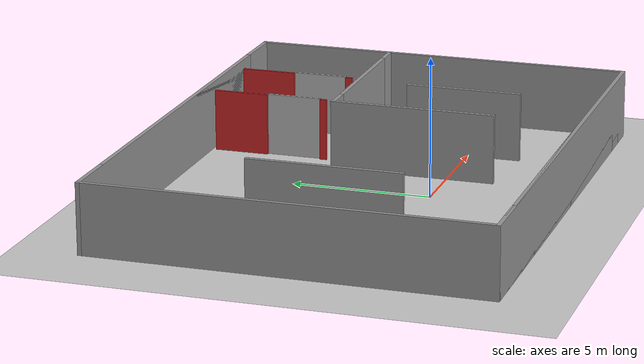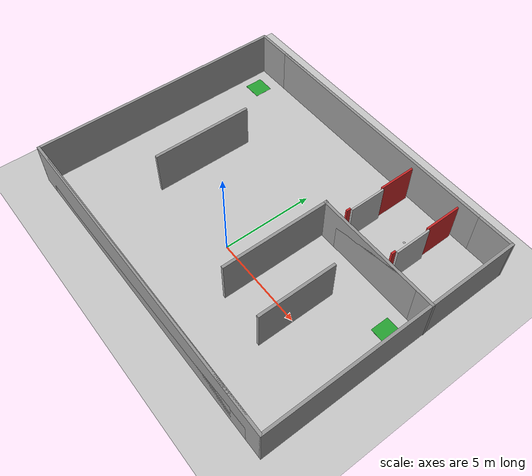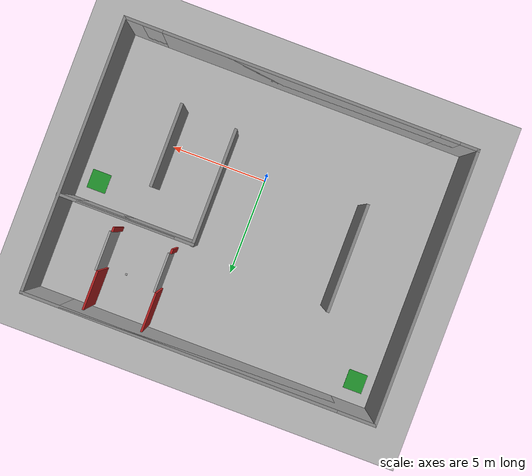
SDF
<sdf version="1.6">
 <world name="default">
  <light name="sun" type="directional">
   <pose>0 0 10 0 -0 0</pose>
   <diffuse>0.8 0.8 0.8 1</diffuse>
   <specular>0.1 0.1 0.1 1</specular>
   <attenuation>
    <range>1000</range>
    <constant>0.9</constant>
    <linear>0.01</linear>
    <quadratic>0.001</quadratic>
   </attenuation>
   <direction>-0.5 0.5 -1</direction>
  </light>
  <model name="ground_plane">
   <static>1</static>
   <link name="link">
    <collision name="collision">
     <geometry><plane><normal>0 0 1</normal><size>100 100</size></plane></geometry>
     <surface><friction><ode><mu>100</mu><mu2>50</mu2></ode></friction></surface>
    </collision>
    <visual name="visual">
     <cast_shadows>0</cast_shadows>
     <geometry><plane><normal>0 0 1</normal><size>100 100</size></plane></geometry>
     <material>
      <script><uri>file://media/materials/scripts/gazebo.material</uri><name>Gazebo/Grey</name></script>
     </material>
    </visual>
   </link>
  </model>
  <plugin name="elevator_event_plugin" filename="libSimEventsPlugin.so">
   <region><name>region1</name><volume><min>-8.5 7.5 0.0</min><max>-7.5 8.5 0.5</max></volume></region>
   <region><name>region2</name><volume><min>-7.5 7.5 0.0</min><max>-6.5 8.5 0.5</max></volume></region>
   <region><name>door1_close</name><volume><min>-8.5 6.5 0.0</min><max>-6.5 7.5 0.5</max></volume></region>
   <region><name>region3</name><volume><min>7.5 2.5 0.0</min><max>8.5 3.5 0.5</max></volume></region>
   <region><name>region4</name><volume><min>6.5 2.5 0.0</min><max>7.5 3.5 0.5</max></volume></region>
   <region><name>region5</name><volume><min>6.5 1.5 0.0</min><max>8.5 2.5 0.5</max></volume></region>
   <region><name>region6</name><volume><min>6.5 -8.5 0.05</min><max>7.5 7.5 0.5</max></volume></region>
   <event>
    <name>region1_event</name>
    <type>occupied</type>
    <region>region1</region>
    <topic>~/door1</topic>
    <msg_data>0</msg_data>
   </event>
   <event>
    <name>close1_event</name>
    <type>occupied</type>
    <region>door1_close</region>
    <topic>~/door1</topic>
    <msg_data>1</msg_data>
   </event>
   <event>
    <name>region2_event</name>
    <type>occupied</type>
    <region>region2</region>
    <topic>~/door1</topic>
    <msg_data>1</msg_data>
   </event>
   <event>
    <name>region3_event</name>
    <type>occupied</type>
    <region>region3</region>
    <topic>~/door2</topic>
    <msg_data>0</msg_data>
   </event>
   <event>
    <name>region4_event</name>
    <type>occupied</type>
    <region>region4</region>
    <topic>~/door2</topic>
    <msg_data>1</msg_data>
   </event>
   <event>
    <name>region5_event</name>
    <type>occupied</type>
    <region>region5</region>
    <topic>~/door2</topic>
    <msg_data>1</msg_data>
   </event>
  </plugin>
  <model name="door1">
   <pose>2 7 0.005 0 -0 0</pose>
   <link name="link">
    <inertial>
     <mass>800</mass>
     <inertia><ixx>1</ixx><ixy>0</ixy><ixz>0</ixz><iyy>1</iyy><iyz>0</iyz><izz>1</izz></inertia>
    </inertial>
    <collision name="floor_collision"><geometry><box><size>0.01 0.01 0.01</size></box></geometry></collision>
    <visual name="floor_visual"><geometry><box><size>0.01 0.01 0.01</size></box></geometry></visual>
    <collision name="wall1_collision">
     <pose>1 1 1.125 0 -0 0</pose>
     <geometry><box><size>0.1 2 2.25</size></box></geometry>
    </collision>
    <visual name="wall1_visual">
     <pose>1 1 1.125 0 -0 0</pose>
     <geometry><box><size>0.1 2 2.25</size></box></geometry>
     <material><script><name>Gazebo/Red</name><uri>__default__</uri></script></material>
    </visual>
    <collision name="wall2_collision">
     <pose>1 -2.125 1.125 0 -0 0</pose>
     <geometry><box><size>0.1 0.25 2.25</size></box></geometry>
    </collision>
    <visual name="wall2_visual">
     <pose>1 -2.125 1.125 0 -0 0</pose>
     <geometry><box><size>0.1 0.25 2.25</size></box></geometry>
     <material><script><name>Gazebo/Red</name><uri>__default__</uri></script></material>
    </visual>
   </link>
   <link name="door">
    <pose>1.1 -1 1.125 0 -0 0</pose>
    <collision name="collision"><geometry><box><size>0.1 2 2.25</size></box></geometry></collision>
    <visual name="visual"><geometry><box><size>0.1 2 2.25</size></box></geometry></visual>
    <inertial>
     <inertia><ixx>1</ixx><ixy>0</ixy><ixz>0</ixz><iyy>1</iyy><iyz>0</iyz><izz>1</izz></inertia>
     <mass>1</mass>
    </inertial>
   </link>
   <joint name="door" type="prismatic">
    <parent>link</parent>
    <child>door</child>
    <axis>
     <xyz>0 1 0</xyz>
     <limit><lower>0</lower><upper>2</upper><effort>10</effort></limit>
     <dynamics>
      <damping>2</damping>
      <spring_reference>0</spring_reference>
      <spring_stiffness>0</spring_stiffness>
     </dynamics>
     <use_parent_model_frame>0</use_parent_model_frame>
    </axis>
   </joint>
   <joint name="lift" type="prismatic">
    <parent>world</parent>
    <child>link</child>
    <axis>
     <xyz>0 0 1</xyz>
     <limit><lower>0</lower><upper>10</upper><effort>100000</effort></limit>
     <dynamics>
      <damping>50</damping>
      <spring_reference>0</spring_reference>
      <spring_stiffness>0</spring_stiffness>
     </dynamics>
     <use_parent_model_frame>0</use_parent_model_frame>
    </axis>
    <physics>
     <ode><implicit_spring_damper>1</implicit_spring_damper><limit><cfm>0</cfm><erp>0.2</erp></limit></ode>
    </physics>
   </joint>
   <plugin name="door1_plugin" filename="libdoor.so">
    <lift_joint>door1::lift</lift_joint>
    <door_joint>door1::door</door_joint>
    <floor_height>3.075</floor_height>
    <door_wait_time>10</door_wait_time>
    <topic>~/door1</topic>
   </plugin>
  </model>
  <model name="door2">
   <pose>5 7 0.005 0 0 -2.2e-05</pose>
   <link name="link">
    <inertial>
     <mass>800</mass>
     <inertia><ixx>1</ixx><ixy>0</ixy><ixz>0</ixz><iyy>1</iyy><iyz>0</iyz><izz>1</izz></inertia>
    </inertial>
    <collision name="floor_collision"><geometry><box><size>0.1 0.1 0.01</size></box></geometry></collision>
    <visual name="floor_visual"><geometry><box><size>0.1 0.1 0.01</size></box></geometry></visual>
    <collision name="wall1_collision">
     <pose>1 1 1.125 0 -0 0</pose>
     <geometry><box><size>0.1 2 2.25</size></box></geometry>
    </collision>
    <visual name="wall1_visual">
     <pose>1 1 1.125 0 -0 0</pose>
     <geometry><box><size>0.1 2 2.25</size></box></geometry>
     <material><script><name>Gazebo/Red</name><uri>__default__</uri></script></material>
    </visual>
    <collision name="wall2_collision">
     <pose>1 -2.125 1.125 0 -0 0</pose>
     <geometry><box><size>0.1 0.25 2.25</size></box></geometry>
    </collision>
    <visual name="wall2_visual">
     <pose>1 -2.125 1.125 0 -0 0</pose>
     <geometry><box><size>0.1 0.25 2.25</size></box></geometry>
     <material><script><name>Gazebo/Red</name><uri>__default__</uri></script></material>
    </visual>
   </link>
   <link name="door">
    <pose>1.1 -1 1.125 0 -0 0</pose>
    <collision name="collision"><geometry><box><size>0.1 2 2.25</size></box></geometry></collision>
    <visual name="visual"><geometry><box><size>0.1 2 2.25</size></box></geometry></visual>
    <inertial>
     <inertia><ixx>1</ixx><ixy>0</ixy><ixz>0</ixz><iyy>1</iyy><iyz>0</iyz><izz>1</izz></inertia>
     <mass>1</mass>
    </inertial>
   </link>
   <joint name="door" type="prismatic">
    <parent>link</parent>
    <child>door</child>
    <axis>
     <xyz>0 1 0</xyz>
     <limit><lower>0</lower><upper>2</upper><effort>10</effort></limit>
     <dynamics>
      <damping>2</damping>
      <spring_reference>0</spring_reference>
      <spring_stiffness>0</spring_stiffness>
     </dynamics>
     <use_parent_model_frame>0</use_parent_model_frame>
    </axis>
   </joint>
   <joint name="lift" type="prismatic">
    <parent>world</parent>
    <child>link</child>
    <axis>
     <xyz>0 0 1</xyz>
     <limit><lower>0</lower><upper>10</upper><effort>100000</effort></limit>
     <dynamics>
      <damping>50</damping>
      <spring_reference>0</spring_reference>
      <spring_stiffness>0</spring_stiffness>
     </dynamics>
     <use_parent_model_frame>0</use_parent_model_frame>
    </axis>
    <physics>
     <ode><implicit_spring_damper>1</implicit_spring_damper><limit><cfm>0</cfm><erp>0.2</erp></limit></ode>
    </physics>
   </joint>
   <plugin name="door2_plugin" filename="libdoor.so">
    <lift_joint>door2::lift</lift_joint>
    <door_joint>door2::door</door_joint>
    <floor_height>3.075</floor_height>
    <door_wait_time>10</door_wait_time>
    <topic>~/door2</topic>
   </plugin>
  </model>
  <gravity>0 0 -9.8</gravity>
  <magnetic_field>6e-06 2.3e-05 -4.2e-05</magnetic_field>
  <atmosphere type="adiabatic"/>
  <physics name="default_physics" default="0" type="ode">
   <max_step_size>0.001</max_step_size>
   <real_time_factor>1</real_time_factor>
   <real_time_update_rate>1000</real_time_update_rate>
  </physics>
  <scene><ambient>0.4 0.4 0.4 1</ambient><background>0.7 0.7 0.7 1</background><shadows>1</shadows></scene>
  <spherical_coordinates>
   <surface_model>EARTH_WGS84</surface_model>
   <latitude_deg>0</latitude_deg>
   <longitude_deg>0</longitude_deg>
   <elevation>0</elevation>
   <heading_deg>0</heading_deg>
  </spherical_coordinates>
  <model name="switch">
   <link name="link">
    <inertial>
     <mass>1</mass>
     <inertia>
      <ixx>0.166667</ixx>
      <ixy>0</ixy>
      <ixz>0</ixz>
      <iyy>0.166667</iyy>
      <iyz>0</iyz>
      <izz>0.166667</izz>
     </inertia>
    </inertial>
    <gravity>0</gravity>
    <visual name="visual">
     <geometry><box><size>1 1 0.01</size></box></geometry>
     <material><script><name>Gazebo/Green</name><uri>__default__</uri></script></material>
    </visual>
    <collision name="collision">
     <pose>0 0 0.005 0 -0 0</pose>
     <geometry><box><size>0.01 0.01 0.01</size></box></geometry>
     <surface>
      <friction>
       <ode><mu>1</mu><mu2>1</mu2><fdir1>0 0 0</fdir1><slip1>0</slip1><slip2>0</slip2></ode>
       <torsional>
        <coefficient>1</coefficient>
        <patch_radius>0</patch_radius>
        <surface_radius>0</surface_radius>
        <use_patch_radius>1</use_patch_radius>
        <ode><slip>0</slip></ode>
       </torsional>
      </friction>
      <bounce><restitution_coefficient>0</restitution_coefficient><threshold>1e+06</threshold></bounce>
      <contact>
       <collide_without_contact>0</collide_without_contact>
       <collide_without_contact_bitmask>1</collide_without_contact_bitmask>
       <collide_bitmask>1</collide_bitmask>
       <ode>
        <soft_cfm>0</soft_cfm>
        <soft_erp>0.2</soft_erp>
        <kp>1e+13</kp>
        <kd>1</kd>
        <max_vel>0.01</max_vel>
        <min_depth>0</min_depth>
       </ode>
       <bullet>
        <split_impulse>1</split_impulse>
        <split_impulse_penetration_threshold>-0.01</split_impulse_penetration_threshold>
        <soft_cfm>0</soft_cfm>
        <soft_erp>0.2</soft_erp>
        <kp>1e+13</kp>
        <kd>1</kd>
       </bullet>
      </contact>
     </surface>
    </collision>
   </link>
   <static>1</static>
   <pose>-8 8 0 0 -0 0</pose>
  </model>
  <model name="switch_0">
   <link name="link">
    <inertial>
     <mass>1</mass>
     <inertia>
      <ixx>0.166667</ixx>
      <ixy>0</ixy>
      <ixz>0</ixz>
      <iyy>0.166667</iyy>
      <iyz>0</iyz>
      <izz>0.166667</izz>
     </inertia>
    </inertial>
    <gravity>0</gravity>
    <visual name="visual">
     <geometry><box><size>1 1 0.01</size></box></geometry>
     <material><script><name>Gazebo/Green</name><uri>__default__</uri></script></material>
     <pose>0 0 0.005 0 -0 0</pose>
    </visual>
    <collision name="collision">
     <pose>0 0 0.005 0 -0 0</pose>
     <geometry><box><size>0.01 0.01 0.01</size></box></geometry>
     <surface>
      <friction>
       <ode><mu>1</mu><mu2>1</mu2><fdir1>0 0 0</fdir1><slip1>0</slip1><slip2>0</slip2></ode>
       <torsional>
        <coefficient>1</coefficient>
        <patch_radius>0</patch_radius>
        <surface_radius>0</surface_radius>
        <use_patch_radius>1</use_patch_radius>
        <ode><slip>0</slip></ode>
       </torsional>
      </friction>
      <bounce><restitution_coefficient>0</restitution_coefficient><threshold>1e+06</threshold></bounce>
      <contact>
       <collide_without_contact>0</collide_without_contact>
       <collide_without_contact_bitmask>1</collide_without_contact_bitmask>
       <collide_bitmask>1</collide_bitmask>
       <ode>
        <soft_cfm>0</soft_cfm>
        <soft_erp>0.2</soft_erp>
        <kp>1e+13</kp>
        <kd>1</kd>
        <max_vel>0.01</max_vel>
        <min_depth>0</min_depth>
       </ode>
       <bullet>
        <split_impulse>1</split_impulse>
        <split_impulse_penetration_threshold>-0.01</split_impulse_penetration_threshold>
        <soft_cfm>0</soft_cfm>
        <soft_erp>0.2</soft_erp>
        <kp>1e+13</kp>
        <kd>1</kd>
       </bullet>
      </contact>
     </surface>
    </collision>
   </link>
   <static>1</static>
   <pose>8 3 0 0 -0 0</pose>
  </model>
  <model name="my_world">
   <link name="Wall_0">
    <pose>-0.008 9 0 0 -0 0</pose>
    <inertial>
     <mass>1</mass>
     <inertia><ixx>1</ixx><ixy>0</ixy><ixz>0</ixz><iyy>1</iyy><iyz>0</iyz><izz>1</izz></inertia>
    </inertial>
    <visual name="ModelPreview_1::Wall_0::visual_1">
     <pose>0 0 1.25 0 -0 0</pose>
     <geometry><box><size>14.15 0.15 2.5</size></box></geometry>
     <material>
      <script><uri>file://media/materials/scripts/gazebo.material</uri><name>Gazebo/Grey</name></script>
      <ambient>1 1 1 1</ambient>
      <diffuse>0.7 0.7 0.7 1</diffuse>
      <specular>0.01 0.01 0.01 1</specular>
      <emissive>0 0 0 1</emissive>
      <shader type="vertex"><normal_map>__default__</normal_map></shader>
     </material>
    </visual>
    <visual name="Wall_0_Visual">
     <pose>0 0 1.25 0 -0 0</pose>
     <geometry><box><size>18.15 0.15 2.5</size></box></geometry>
     <material>
      <script><uri>file://media/materials/scripts/gazebo.material</uri><name>Gazebo/Grey</name></script>
      <ambient>1 1 1 1</ambient>
      <diffuse>0.7 0.7 0.7 1</diffuse>
      <specular>0.01 0.01 0.01 1</specular>
      <emissive>0 0 0 1</emissive>
      <shader type="vertex"><normal_map>__default__</normal_map></shader>
     </material>
    </visual>
    <collision name="Wall_0_Collision">
     <pose>0 0 1.25 0 -0 0</pose>
     <geometry><box><size>18.15 0.15 2.5</size></box></geometry>
     <surface>
      <friction>
       <ode><mu>1</mu><mu2>1</mu2><fdir1>0 0 0</fdir1><slip1>0</slip1><slip2>0</slip2></ode>
       <torsional>
        <coefficient>1</coefficient>
        <patch_radius>0</patch_radius>
        <surface_radius>0</surface_radius>
        <use_patch_radius>1</use_patch_radius>
        <ode><slip>0</slip></ode>
       </torsional>
      </friction>
      <bounce><restitution_coefficient>0</restitution_coefficient><threshold>1e+06</threshold></bounce>
      <contact>
       <collide_without_contact>0</collide_without_contact>
       <collide_without_contact_bitmask>1</collide_without_contact_bitmask>
       <collide_bitmask>1</collide_bitmask>
       <ode>
        <soft_cfm>0</soft_cfm>
        <soft_erp>0.2</soft_erp>
        <kp>1e+13</kp>
        <kd>1</kd>
        <max_vel>0.01</max_vel>
        <min_depth>0</min_depth>
       </ode>
       <bullet>
        <split_impulse>1</split_impulse>
        <split_impulse_penetration_threshold>-0.01</split_impulse_penetration_threshold>
        <soft_cfm>0</soft_cfm>
        <soft_erp>0.2</soft_erp>
        <kp>1e+13</kp>
        <kd>1</kd>
       </bullet>
      </contact>
     </surface>
    </collision>
   </link>
   <link name="Wall_10">
    <pose>5.0 0 0 0 0 -1.5708</pose>
    <inertial>
     <mass>1</mass>
     <inertia><ixx>1</ixx><ixy>0</ixy><ixz>0</ixz><iyy>1</iyy><iyz>0</iyz><izz>1</izz></inertia>
    </inertial>
    <visual name="Wall_10_Visual">
     <pose>0 0 1.25 0 -0 0</pose>
     <geometry><box><size>4.25 0.15 2.5</size></box></geometry>
     <material>
      <script><uri>file://media/materials/scripts/gazebo.material</uri><name>Gazebo/Grey</name></script>
      <ambient>1 1 1 1</ambient>
      <diffuse>0.7 0.7 0.7 1</diffuse>
      <specular>0.01 0.01 0.01 1</specular>
      <emissive>0 0 0 1</emissive>
      <shader type="vertex"><normal_map>__default__</normal_map></shader>
     </material>
    </visual>
    <collision name="Wall_10_Collision">
     <pose>0 0 1.25 0 -0 0</pose>
     <geometry><box><size>4.25 0.15 2.5</size></box></geometry>
     <surface>
      <friction>
       <ode><mu>1</mu><mu2>1</mu2><fdir1>0 0 0</fdir1><slip1>0</slip1><slip2>0</slip2></ode>
       <torsional>
        <coefficient>1</coefficient>
        <patch_radius>0</patch_radius>
        <surface_radius>0</surface_radius>
        <use_patch_radius>1</use_patch_radius>
        <ode><slip>0</slip></ode>
       </torsional>
      </friction>
      <bounce><restitution_coefficient>0</restitution_coefficient><threshold>1e+06</threshold></bounce>
      <contact>
       <collide_without_contact>0</collide_without_contact>
       <collide_without_contact_bitmask>1</collide_without_contact_bitmask>
       <collide_bitmask>1</collide_bitmask>
       <ode>
        <soft_cfm>0</soft_cfm>
        <soft_erp>0.2</soft_erp>
        <kp>1e+13</kp>
        <kd>1</kd>
        <max_vel>0.01</max_vel>
        <min_depth>0</min_depth>
       </ode>
       <bullet>
        <split_impulse>1</split_impulse>
        <split_impulse_penetration_threshold>-0.01</split_impulse_penetration_threshold>
        <soft_cfm>0</soft_cfm>
        <soft_erp>0.2</soft_erp>
        <kp>1e+13</kp>
        <kd>1</kd>
       </bullet>
      </contact>
     </surface>
    </collision>
   </link>
   <link name="Wall_12">
    <pose>5.583 4 0 0 -0 3.14159</pose>
    <inertial>
     <mass>1</mass>
     <inertia><ixx>1</ixx><ixy>0</ixy><ixz>0</ixz><iyy>1</iyy><iyz>0</iyz><izz>1</izz></inertia>
    </inertial>
    <visual name="ModelPreview_1::Wall_12::visual_1">
     <pose>0 0 1.25 0 -0 0</pose>
     <geometry><box><size>5 0.15 2.5</size></box></geometry>
     <material>
      <script><uri>file://media/materials/scripts/gazebo.material</uri><name>Gazebo/Grey</name></script>
      <ambient>1 1 1 1</ambient>
      <diffuse>0.7 0.7 0.7 1</diffuse>
      <specular>0.01 0.01 0.01 1</specular>
      <emissive>0 0 0 1</emissive>
      <shader type="vertex"><normal_map>__default__</normal_map></shader>
     </material>
    </visual>
    <visual name="ModelPreview_1::Wall_12::visual_2">
     <pose>0 0 1.25 0 -0 0</pose>
     <geometry><box><size>5 0.15 2.5</size></box></geometry>
     <material>
      <script><uri>file://media/materials/scripts/gazebo.material</uri><name>Gazebo/Grey</name></script>
      <ambient>1 1 1 1</ambient>
      <diffuse>0.7 0.7 0.7 1</diffuse>
      <specular>0.01 0.01 0.01 1</specular>
      <emissive>0 0 0 1</emissive>
      <shader type="vertex"><normal_map>__default__</normal_map></shader>
     </material>
    </visual>
    <visual name="Wall_12_Visual">
     <pose>0 0 1.25 0 -0 0</pose>
     <geometry><box><size>7 0.15 2.5</size></box></geometry>
     <material>
      <script><uri>file://media/materials/scripts/gazebo.material</uri><name>Gazebo/Grey</name></script>
      <ambient>1 1 1 1</ambient>
      <diffuse>0.7 0.7 0.7 1</diffuse>
      <specular>0.01 0.01 0.01 1</specular>
      <emissive>0 0 0 1</emissive>
      <shader type="vertex"><normal_map>__default__</normal_map></shader>
     </material>
    </visual>
    <collision name="Wall_12_Collision">
     <pose>0 0 1.25 0 -0 0</pose>
     <geometry><box><size>7 0.15 2.5</size></box></geometry>
     <surface>
      <friction>
       <ode><mu>1</mu><mu2>1</mu2><fdir1>0 0 0</fdir1><slip1>0</slip1><slip2>0</slip2></ode>
       <torsional>
        <coefficient>1</coefficient>
        <patch_radius>0</patch_radius>
        <surface_radius>0</surface_radius>
        <use_patch_radius>1</use_patch_radius>
        <ode><slip>0</slip></ode>
       </torsional>
      </friction>
      <bounce><restitution_coefficient>0</restitution_coefficient><threshold>1e+06</threshold></bounce>
      <contact>
       <collide_without_contact>0</collide_without_contact>
       <collide_without_contact_bitmask>1</collide_without_contact_bitmask>
       <collide_bitmask>1</collide_bitmask>
       <ode>
        <soft_cfm>0</soft_cfm>
        <soft_erp>0.2</soft_erp>
        <kp>1e+13</kp>
        <kd>1</kd>
        <max_vel>0.01</max_vel>
        <min_depth>0</min_depth>
       </ode>
       <bullet>
        <split_impulse>1</split_impulse>
        <split_impulse_penetration_threshold>-0.01</split_impulse_penetration_threshold>
        <soft_cfm>0</soft_cfm>
        <soft_erp>0.2</soft_erp>
        <kp>1e+13</kp>
        <kd>1</kd>
       </bullet>
      </contact>
     </surface>
    </collision>
   </link>
   <link name="Wall_13">
    <pose>2.15792 1.1 0 0 0 -1.57081</pose>
    <inertial>
     <mass>1</mass>
     <inertia><ixx>1</ixx><ixy>0</ixy><ixz>0</ixz><iyy>1</iyy><iyz>0</iyz><izz>1</izz></inertia>
    </inertial>
    <visual name="Wall_13_Visual">
     <pose>0 0 1.25 0 -0 0</pose>
     <geometry><box><size>6 0.15 2.5</size></box></geometry>
     <material>
      <script><uri>file://media/materials/scripts/gazebo.material</uri><name>Gazebo/Grey</name></script>
      <ambient>1 1 1 1</ambient>
      <diffuse>0.7 0.7 0.7 1</diffuse>
      <specular>0.01 0.01 0.01 1</specular>
      <emissive>0 0 0 1</emissive>
      <shader type="vertex"><normal_map>__default__</normal_map></shader>
     </material>
    </visual>
    <collision name="Wall_13_Collision">
     <pose>0 0 1.25 0 -0 0</pose>
     <geometry><box><size>6 0.15 2.5</size></box></geometry>
     <surface>
      <friction>
       <ode><mu>1</mu><mu2>1</mu2><fdir1>0 0 0</fdir1><slip1>0</slip1><slip2>0</slip2></ode>
       <torsional>
        <coefficient>1</coefficient>
        <patch_radius>0</patch_radius>
        <surface_radius>0</surface_radius>
        <use_patch_radius>1</use_patch_radius>
        <ode><slip>0</slip></ode>
       </torsional>
      </friction>
      <bounce><restitution_coefficient>0</restitution_coefficient><threshold>1e+06</threshold></bounce>
      <contact>
       <collide_without_contact>0</collide_without_contact>
       <collide_without_contact_bitmask>1</collide_without_contact_bitmask>
       <collide_bitmask>1</collide_bitmask>
       <ode>
        <soft_cfm>0</soft_cfm>
        <soft_erp>0.2</soft_erp>
        <kp>1e+13</kp>
        <kd>1</kd>
        <max_vel>0.01</max_vel>
        <min_depth>0</min_depth>
       </ode>
       <bullet>
        <split_impulse>1</split_impulse>
        <split_impulse_penetration_threshold>-0.01</split_impulse_penetration_threshold>
        <soft_cfm>0</soft_cfm>
        <soft_erp>0.2</soft_erp>
        <kp>1e+13</kp>
        <kd>1</kd>
       </bullet>
      </contact>
     </surface>
    </collision>
   </link>
   <link name="Wall_2">
    <pose>-0.008 -5 0 0 -0 0</pose>
    <inertial>
     <mass>1</mass>
     <inertia><ixx>1</ixx><ixy>0</ixy><ixz>0</ixz><iyy>1</iyy><iyz>0</iyz><izz>1</izz></inertia>
    </inertial>
    <visual name="ModelPreview_1::Wall_2::visual_2">
     <pose>0 0 1.25 0 -0 0</pose>
     <geometry><box><size>16.15 0.15 2.5</size></box></geometry>
     <material>
      <script><uri>file://media/materials/scripts/gazebo.material</uri><name>Gazebo/Grey</name></script>
      <ambient>1 1 1 1</ambient>
      <diffuse>0.7 0.7 0.7 1</diffuse>
      <specular>0.01 0.01 0.01 1</specular>
      <emissive>0 0 0 1</emissive>
      <shader type="vertex"><normal_map>__default__</normal_map></shader>
     </material>
    </visual>
    <visual name="ModelPreview_1::Wall_2::visual_1">
     <pose>0 0 1.25 0 -0 0</pose>
     <geometry><box><size>14.15 0.15 2.5</size></box></geometry>
     <material>
      <script><uri>file://media/materials/scripts/gazebo.material</uri><name>Gazebo/Grey</name></script>
      <ambient>1 1 1 1</ambient>
      <diffuse>0.7 0.7 0.7 1</diffuse>
      <specular>0.01 0.01 0.01 1</specular>
      <emissive>0 0 0 1</emissive>
      <shader type="vertex"><normal_map>__default__</normal_map></shader>
     </material>
    </visual>
    <visual name="Wall_2_Visual">
     <pose>0 0 1.25 0 -0 0</pose>
     <geometry><box><size>18.15 0.15 2.5</size></box></geometry>
     <material>
      <script><uri>file://media/materials/scripts/gazebo.material</uri><name>Gazebo/Grey</name></script>
      <ambient>1 1 1 1</ambient>
      <diffuse>0.7 0.7 0.7 1</diffuse>
      <specular>0.01 0.01 0.01 1</specular>
      <emissive>0 0 0 1</emissive>
      <shader type="vertex"><normal_map>__default__</normal_map></shader>
     </material>
    </visual>
    <collision name="Wall_2_Collision">
     <pose>0 0 1.25 0 -0 0</pose>
     <geometry><box><size>18.15 0.15 2.5</size></box></geometry>
     <surface>
      <friction>
       <ode><mu>1</mu><mu2>1</mu2><fdir1>0 0 0</fdir1><slip1>0</slip1><slip2>0</slip2></ode>
       <torsional>
        <coefficient>1</coefficient>
        <patch_radius>0</patch_radius>
        <surface_radius>0</surface_radius>
        <use_patch_radius>1</use_patch_radius>
        <ode><slip>0</slip></ode>
       </torsional>
      </friction>
      <bounce><restitution_coefficient>0</restitution_coefficient><threshold>1e+06</threshold></bounce>
      <contact>
       <collide_without_contact>0</collide_without_contact>
       <collide_without_contact_bitmask>1</collide_without_contact_bitmask>
       <collide_bitmask>1</collide_bitmask>
       <ode>
        <soft_cfm>0</soft_cfm>
        <soft_erp>0.2</soft_erp>
        <kp>1e+13</kp>
        <kd>1</kd>
        <max_vel>0.01</max_vel>
        <min_depth>0</min_depth>
       </ode>
       <bullet>
        <split_impulse>1</split_impulse>
        <split_impulse_penetration_threshold>-0.01</split_impulse_penetration_threshold>
        <soft_cfm>0</soft_cfm>
        <soft_erp>0.2</soft_erp>
        <kp>1e+13</kp>
        <kd>1</kd>
       </bullet>
      </contact>
     </surface>
    </collision>
   </link>
   <link name="Wall_4">
    <pose>-9.008 2 0 0 0 -1.5708</pose>
    <inertial>
     <mass>1</mass>
     <inertia><ixx>1</ixx><ixy>0</ixy><ixz>0</ixz><iyy>1</iyy><iyz>0</iyz><izz>1</izz></inertia>
    </inertial>
    <visual name="Wall_4_Visual">
     <pose>0 0 1.25 0 -0 0</pose>
     <geometry><box><size>14.15 0.15 2.5</size></box></geometry>
     <material>
      <script><uri>file://media/materials/scripts/gazebo.material</uri><name>Gazebo/Grey</name></script>
      <ambient>1 1 1 1</ambient>
      <diffuse>0.7 0.7 0.7 1</diffuse>
      <specular>0.01 0.01 0.01 1</specular>
      <emissive>0 0 0 1</emissive>
      <shader type="vertex"><normal_map>__default__</normal_map></shader>
     </material>
    </visual>
    <collision name="Wall_4_Collision">
     <pose>0 0 1.25 0 -0 0</pose>
     <geometry><box><size>14.15 0.15 2.5</size></box></geometry>
     <surface>
      <friction>
       <ode><mu>1</mu><mu2>1</mu2><fdir1>0 0 0</fdir1><slip1>0</slip1><slip2>0</slip2></ode>
       <torsional>
        <coefficient>1</coefficient>
        <patch_radius>0</patch_radius>
        <surface_radius>0</surface_radius>
        <use_patch_radius>1</use_patch_radius>
        <ode><slip>0</slip></ode>
       </torsional>
      </friction>
      <bounce><restitution_coefficient>0</restitution_coefficient><threshold>1e+06</threshold></bounce>
      <contact>
       <collide_without_contact>0</collide_without_contact>
       <collide_without_contact_bitmask>1</collide_without_contact_bitmask>
       <collide_bitmask>1</collide_bitmask>
       <ode>
        <soft_cfm>0</soft_cfm>
        <soft_erp>0.2</soft_erp>
        <kp>1e+13</kp>
        <kd>1</kd>
        <max_vel>0.01</max_vel>
        <min_depth>0</min_depth>
       </ode>
       <bullet>
        <split_impulse>1</split_impulse>
        <split_impulse_penetration_threshold>-0.01</split_impulse_penetration_threshold>
        <soft_cfm>0</soft_cfm>
        <soft_erp>0.2</soft_erp>
        <kp>1e+13</kp>
        <kd>1</kd>
       </bullet>
      </contact>
     </surface>
    </collision>
   </link>
   <link name="Wall_6">
    <pose>8.992 2 0 0 -0 1.5708</pose>
    <inertial>
     <mass>1</mass>
     <inertia><ixx>1</ixx><ixy>0</ixy><ixz>0</ixz><iyy>1</iyy><iyz>0</iyz><izz>1</izz></inertia>
    </inertial>
    <visual name="ModelPreview_1::Wall_6::visual_1">
     <pose>0 0 1.25 0 -0 0</pose>
     <geometry><box><size>14.15 0.15 2.5</size></box></geometry>
     <material>
      <script><uri>file://media/materials/scripts/gazebo.material</uri><name>Gazebo/Grey</name></script>
      <ambient>1 1 1 1</ambient>
      <diffuse>0.7 0.7 0.7 1</diffuse>
      <specular>0.01 0.01 0.01 1</specular>
      <emissive>0 0 0 1</emissive>
      <shader type="vertex"><normal_map>__default__</normal_map></shader>
     </material>
    </visual>
    <collision name="Wall_6_Collision">
     <pose>0 0 1.25 0 -0 0</pose>
     <geometry><box><size>14.15 0.15 2.5</size></box></geometry>
     <surface>
      <friction>
       <ode><mu>1</mu><mu2>1</mu2><fdir1>0 0 0</fdir1><slip1>0</slip1><slip2>0</slip2></ode>
       <torsional>
        <coefficient>1</coefficient>
        <patch_radius>0</patch_radius>
        <surface_radius>0</surface_radius>
        <use_patch_radius>1</use_patch_radius>
        <ode><slip>0</slip></ode>
       </torsional>
      </friction>
      <bounce><restitution_coefficient>0</restitution_coefficient><threshold>1e+06</threshold></bounce>
      <contact>
       <collide_without_contact>0</collide_without_contact>
       <collide_without_contact_bitmask>1</collide_without_contact_bitmask>
       <collide_bitmask>1</collide_bitmask>
       <ode>
        <soft_cfm>0</soft_cfm>
        <soft_erp>0.2</soft_erp>
        <kp>1e+13</kp>
        <kd>1</kd>
        <max_vel>0.01</max_vel>
        <min_depth>0</min_depth>
       </ode>
       <bullet>
        <split_impulse>1</split_impulse>
        <split_impulse_penetration_threshold>-0.01</split_impulse_penetration_threshold>
        <soft_cfm>0</soft_cfm>
        <soft_erp>0.2</soft_erp>
        <kp>1e+13</kp>
        <kd>1</kd>
       </bullet>
      </contact>
     </surface>
    </collision>
   </link>
   <link name="Wall_8">
    <pose>-5. 2 0 0 0 -1.5708</pose>
    <inertial>
     <mass>1</mass>
     <inertia><ixx>1</ixx><ixy>0</ixy><ixz>0</ixz><iyy>1</iyy><iyz>0</iyz><izz>1</izz></inertia>
    </inertial>
    <visual name="Wall_8_Visual">
     <pose>0 0 1.25 0 -0 0</pose>
     <geometry><box><size>5.5 0.15 2.5</size></box></geometry>
     <material>
      <script><uri>file://media/materials/scripts/gazebo.material</uri><name>Gazebo/Grey</name></script>
      <ambient>1 1 1 1</ambient>
      <diffuse>0.7 0.7 0.7 1</diffuse>
      <specular>0.01 0.01 0.01 1</specular>
      <emissive>0 0 0 1</emissive>
      <shader type="vertex"><normal_map>__default__</normal_map></shader>
     </material>
    </visual>
    <collision name="Wall_8_Collision">
     <pose>0 0 1.25 0 -0 0</pose>
     <geometry><box><size>5.5 0.15 2.5</size></box></geometry>
     <surface>
      <friction>
       <ode><mu>1</mu><mu2>1</mu2><fdir1>0 0 0</fdir1><slip1>0</slip1><slip2>0</slip2></ode>
       <torsional>
        <coefficient>1</coefficient>
        <patch_radius>0</patch_radius>
        <surface_radius>0</surface_radius>
        <use_patch_radius>1</use_patch_radius>
        <ode><slip>0</slip></ode>
       </torsional>
      </friction>
      <bounce><restitution_coefficient>0</restitution_coefficient><threshold>1e+06</threshold></bounce>
      <contact>
       <collide_without_contact>0</collide_without_contact>
       <collide_without_contact_bitmask>1</collide_without_contact_bitmask>
       <collide_bitmask>1</collide_bitmask>
       <ode>
        <soft_cfm>0</soft_cfm>
        <soft_erp>0.2</soft_erp>
        <kp>1e+13</kp>
        <kd>1</kd>
        <max_vel>0.01</max_vel>
        <min_depth>0</min_depth>
       </ode>
       <bullet>
        <split_impulse>1</split_impulse>
        <split_impulse_penetration_threshold>-0.01</split_impulse_penetration_threshold>
        <soft_cfm>0</soft_cfm>
        <soft_erp>0.2</soft_erp>
        <kp>1e+13</kp>
        <kd>1</kd>
       </bullet>
      </contact>
     </surface>
    </collision>
   </link>
   <static>1</static>
   <pose>0 0.2 0 0 -0 0</pose>
  </model>
 </world>
</sdf>
